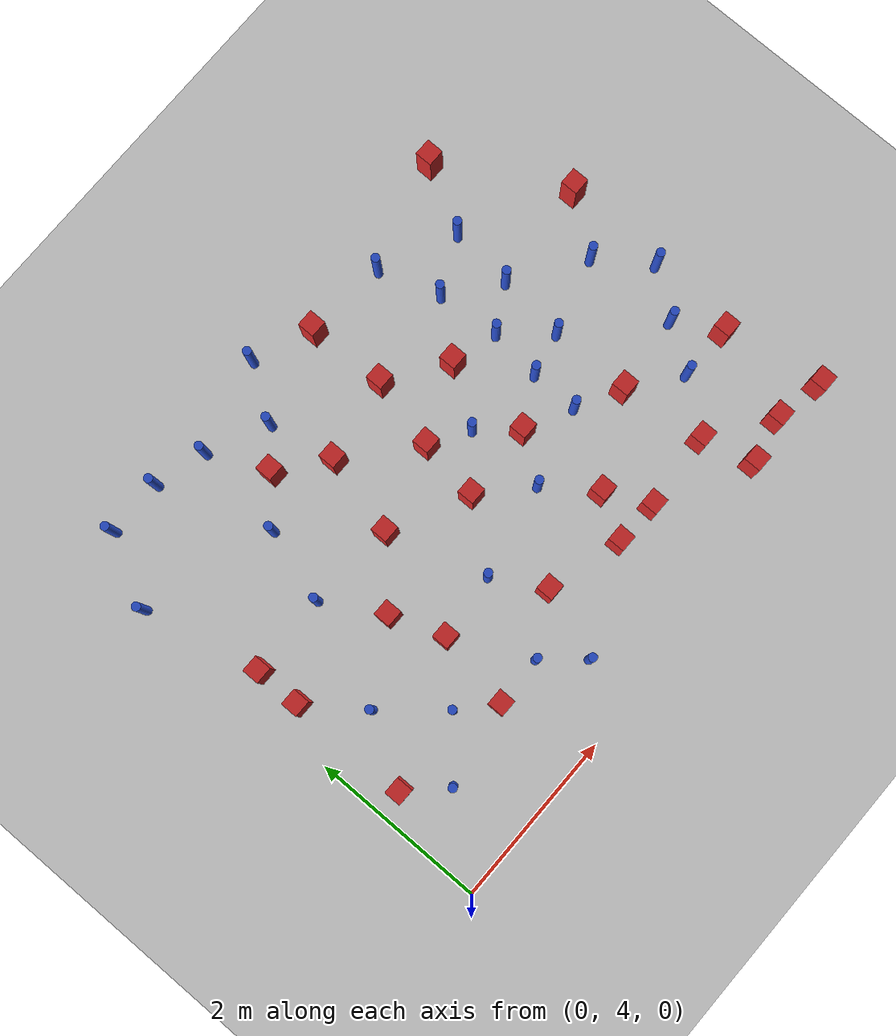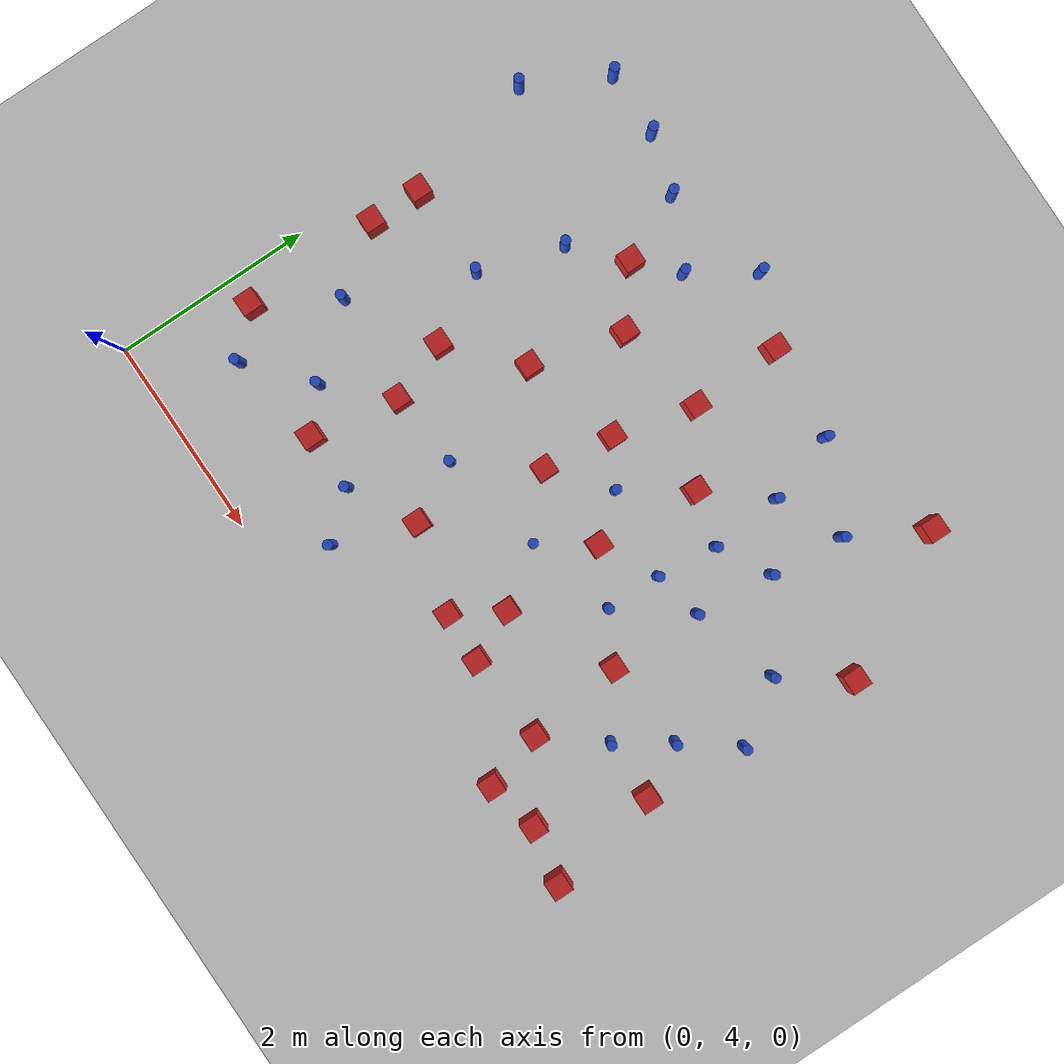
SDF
<sdf version="1.6">
 <world name="default">
  <model name="ground_plane">
   <static>1</static>
   <link name="link">
    <collision name="collision">
     <geometry><plane><normal>0 0 1</normal><size>100 100</size></plane></geometry>
     <surface><friction><ode><mu>100</mu><mu2>50</mu2></ode></friction></surface>
    </collision>
    <visual name="visual">
     <cast_shadows>0</cast_shadows>
     <geometry><plane><normal>0 0 1</normal><size>100 100</size></plane></geometry>
     <material>
      <ambient>1.0 1.0 1.0 1.0</ambient>
      <diffuse>0.8 0.8 0.8 1.0</diffuse>
      <specular>0.01 0.01 0.01 1.000000</specular>
     </material>
    </visual>
   </link>
  </model>
  <model name="pole_obstacle1">
   <static>true</static>
   <pose>4.37582242248 9.04554621541 2.88873142074e-08 -9.9053668967e-09 4.60219948993e-07 -1.20965994957e-07</pose>
   <link name="link">
    <pose>0 0 0.3 0 -0 0</pose>
    <inertial>
     <mass>1</mass>
     <inertia><ixx>0.145833</ixx><ixy>0</ixy><ixz>0</ixz><iyy>0.145833</iyy><iyz>0</iyz><izz>0.125</izz></inertia>
    </inertial>
    <collision name="collision">
     <geometry><cylinder><radius>0.05</radius><length>.6</length></cylinder></geometry>
    </collision>
    <visual name="visual">
     <geometry><cylinder><radius>0.05</radius><length>.6</length></cylinder></geometry>
     <material>
      <script><name>Gazebo/Blue</name><uri>file://media/materials/scripts/gazebo.material</uri></script>
     </material>
    </visual>
   </link>
  </model>
  <model name="square_post_obstacle7">
   <static>true</static>
   <pose>2.27140523398 7.10940884494 8.22691968438e-08 7.2212513382e-06 -7.54495500217e-07 2.29674213826e-05</pose>
   <link name="link">
    <pose>0 0 0.25 0 -0 0</pose>
    <inertial>
     <mass>100</mass>
     <inertia>
      <ixx>0.166667</ixx>
      <ixy>0</ixy>
      <ixz>0</ixz>
      <iyy>0.166667</iyy>
      <iyz>0</iyz>
      <izz>0.166667</izz>
     </inertia>
    </inertial>
    <collision name="collision"><geometry><box><size>.2 .2 .5</size></box></geometry></collision>
    <visual name="visual">
     <geometry><box><size>.2 .2 .5</size></box></geometry>
     <material>
      <script><name>Gazebo/Red</name><uri>file://media/materials/scripts/gazebo.material</uri></script>
     </material>
    </visual>
   </link>
  </model>
  <model name="pole_obstacle9">
   <static>true</static>
   <pose>1.67303859116 9.12570394465 2.88873142074e-08 -9.90536690474e-09 4.60219948974e-07 -1.2096599497e-07</pose>
   <link name="link">
    <pose>0 0 0.3 0 -0 0</pose>
    <inertial>
     <mass>1</mass>
     <inertia><ixx>0.145833</ixx><ixy>0</ixy><ixz>0</ixz><iyy>0.145833</iyy><iyz>0</iyz><izz>0.125</izz></inertia>
    </inertial>
    <collision name="collision">
     <geometry><cylinder><radius>0.05</radius><length>.6</length></cylinder></geometry>
    </collision>
    <visual name="visual">
     <geometry><cylinder><radius>0.05</radius><length>.6</length></cylinder></geometry>
     <material>
      <script><name>Gazebo/Blue</name><uri>file://media/materials/scripts/gazebo.material</uri></script>
     </material>
    </visual>
   </link>
  </model>
  <model name="square_post_obstacle11">
   <static>true</static>
   <pose>5.87914294403 4.74547711981 8.22691968438e-08 7.2212513382e-06 -7.54495500217e-07 2.29674213826e-05</pose>
   <link name="link">
    <pose>0 0 0.25 0 -0 0</pose>
    <inertial>
     <mass>100</mass>
     <inertia>
      <ixx>0.166667</ixx>
      <ixy>0</ixy>
      <ixz>0</ixz>
      <iyy>0.166667</iyy>
      <iyz>0</iyz>
      <izz>0.166667</izz>
     </inertia>
    </inertial>
    <collision name="collision"><geometry><box><size>.2 .2 .5</size></box></geometry></collision>
    <visual name="visual">
     <geometry><box><size>.2 .2 .5</size></box></geometry>
     <material>
      <script><name>Gazebo/Red</name><uri>file://media/materials/scripts/gazebo.material</uri></script>
     </material>
    </visual>
   </link>
  </model>
  <model name="pole_obstacle14">
   <static>true</static>
   <pose>0.768665898864 6.00691216805 2.88873142074e-08 -9.90536689661e-09 4.60219948993e-07 -1.20965994957e-07</pose>
   <link name="link">
    <pose>0 0 0.3 0 -0 0</pose>
    <inertial>
     <mass>1</mass>
     <inertia><ixx>0.145833</ixx><ixy>0</ixy><ixz>0</ixz><iyy>0.145833</iyy><iyz>0</iyz><izz>0.125</izz></inertia>
    </inertial>
    <collision name="collision">
     <geometry><cylinder><radius>0.05</radius><length>.6</length></cylinder></geometry>
    </collision>
    <visual name="visual">
     <geometry><cylinder><radius>0.05</radius><length>.6</length></cylinder></geometry>
     <material>
      <script><name>Gazebo/Blue</name><uri>file://media/materials/scripts/gazebo.material</uri></script>
     </material>
    </visual>
   </link>
  </model>
  <model name="square_post_obstacle15">
   <static>true</static>
   <pose>4.2999144124 5.15975397987 8.22691968438e-08 7.2212513382e-06 -7.54495500217e-07 2.29674213826e-05</pose>
   <link name="link">
    <pose>0 0 0.25 0 -0 0</pose>
    <inertial>
     <mass>100</mass>
     <inertia>
      <ixx>0.166667</ixx>
      <ixy>0</ixy>
      <ixz>0</ixz>
      <iyy>0.166667</iyy>
      <iyz>0</iyz>
      <izz>0.166667</izz>
     </inertia>
    </inertial>
    <collision name="collision"><geometry><box><size>.2 .2 .5</size></box></geometry></collision>
    <visual name="visual">
     <geometry><box><size>.2 .2 .5</size></box></geometry>
     <material>
      <script><name>Gazebo/Red</name><uri>file://media/materials/scripts/gazebo.material</uri></script>
     </material>
    </visual>
   </link>
  </model>
  <model name="pole_obstacle25">
   <static>true</static>
   <pose>2.26771503602 5.04621927539 2.88873142074e-08 -9.90536689859e-09 4.60219948989e-07 -1.20965994961e-07</pose>
   <link name="link">
    <pose>0 0 0.3 0 -0 0</pose>
    <inertial>
     <mass>1</mass>
     <inertia><ixx>0.145833</ixx><ixy>0</ixy><ixz>0</ixz><iyy>0.145833</iyy><iyz>0</iyz><izz>0.125</izz></inertia>
    </inertial>
    <collision name="collision">
     <geometry><cylinder><radius>0.05</radius><length>.6</length></cylinder></geometry>
    </collision>
    <visual name="visual">
     <geometry><cylinder><radius>0.05</radius><length>.6</length></cylinder></geometry>
     <material>
      <script><name>Gazebo/Blue</name><uri>file://media/materials/scripts/gazebo.material</uri></script>
     </material>
    </visual>
   </link>
  </model>
  <model name="pole_obstacle29">
   <static>true</static>
   <pose>5.16840113811 7.90871207947 2.88873142074e-08 -9.90536690842e-09 4.60219948965e-07 -1.20965994976e-07</pose>
   <link name="link">
    <pose>0 0 0.3 0 -0 0</pose>
    <inertial>
     <mass>1</mass>
     <inertia><ixx>0.145833</ixx><ixy>0</ixy><ixz>0</ixz><iyy>0.145833</iyy><iyz>0</iyz><izz>0.125</izz></inertia>
    </inertial>
    <collision name="collision">
     <geometry><cylinder><radius>0.05</radius><length>.6</length></cylinder></geometry>
    </collision>
    <visual name="visual">
     <geometry><cylinder><radius>0.05</radius><length>.6</length></cylinder></geometry>
     <material>
      <script><name>Gazebo/Blue</name><uri>file://media/materials/scripts/gazebo.material</uri></script>
     </material>
    </visual>
   </link>
  </model>
  <model name="pole_obstacle30">
   <static>true</static>
   <pose>2.635143867 4.61982971929 2.88873142074e-08 -9.90536689859e-09 4.60219948989e-07 -1.20965994961e-07</pose>
   <link name="link">
    <pose>0 0 0.3 0 -0 0</pose>
    <inertial>
     <mass>1</mass>
     <inertia><ixx>0.145833</ixx><ixy>0</ixy><ixz>0</ixz><iyy>0.145833</iyy><iyz>0</iyz><izz>0.125</izz></inertia>
    </inertial>
    <collision name="collision">
     <geometry><cylinder><radius>0.05</radius><length>.6</length></cylinder></geometry>
    </collision>
    <visual name="visual">
     <geometry><cylinder><radius>0.05</radius><length>.6</length></cylinder></geometry>
     <material>
      <script><name>Gazebo/Blue</name><uri>file://media/materials/scripts/gazebo.material</uri></script>
     </material>
    </visual>
   </link>
  </model>
  <model name="square_post_obstacle28">
   <static>true</static>
   <pose>5.64758579217 9.39362033565 8.22691968438e-08 7.22125133819e-06 -7.54495500217e-07 2.29674213826e-05</pose>
   <link name="link">
    <pose>0 0 0.25 0 -0 0</pose>
    <inertial>
     <mass>100</mass>
     <inertia>
      <ixx>0.166667</ixx>
      <ixy>0</ixy>
      <ixz>0</ixz>
      <iyy>0.166667</iyy>
      <iyz>0</iyz>
      <izz>0.166667</izz>
     </inertia>
    </inertial>
    <collision name="collision"><geometry><box><size>.2 .2 .5</size></box></geometry></collision>
    <visual name="visual">
     <geometry><box><size>.2 .2 .5</size></box></geometry>
     <material>
      <script><name>Gazebo/Red</name><uri>file://media/materials/scripts/gazebo.material</uri></script>
     </material>
    </visual>
   </link>
  </model>
  <model name="pole_obstacle44">
   <static>true</static>
   <pose>5.63922672842 5.77628355958 2.88873142074e-08 -9.90536690842e-09 4.60219948965e-07 -1.20965994976e-07</pose>
   <link name="link">
    <pose>0 0 0.3 0 -0 0</pose>
    <inertial>
     <mass>1</mass>
     <inertia><ixx>0.145833</ixx><ixy>0</ixy><ixz>0</ixz><iyy>0.145833</iyy><iyz>0</iyz><izz>0.125</izz></inertia>
    </inertial>
    <collision name="collision">
     <geometry><cylinder><radius>0.05</radius><length>.6</length></cylinder></geometry>
    </collision>
    <visual name="visual">
     <geometry><cylinder><radius>0.05</radius><length>.6</length></cylinder></geometry>
     <material>
      <script><name>Gazebo/Blue</name><uri>file://media/materials/scripts/gazebo.material</uri></script>
     </material>
    </visual>
   </link>
  </model>
  <model name="pole_obstacle46">
   <static>true</static>
   <pose>4.66113152641 7.61625654122 2.88873142074e-08 -9.90536690842e-09 4.60219948965e-07 -1.20965994976e-07</pose>
   <link name="link">
    <pose>0 0 0.3 0 -0 0</pose>
    <inertial>
     <mass>1</mass>
     <inertia><ixx>0.145833</ixx><ixy>0</ixy><ixz>0</ixz><iyy>0.145833</iyy><iyz>0</iyz><izz>0.125</izz></inertia>
    </inertial>
    <collision name="collision">
     <geometry><cylinder><radius>0.05</radius><length>.6</length></cylinder></geometry>
    </collision>
    <visual name="visual">
     <geometry><cylinder><radius>0.05</radius><length>.6</length></cylinder></geometry>
     <material>
      <script><name>Gazebo/Blue</name><uri>file://media/materials/scripts/gazebo.material</uri></script>
     </material>
    </visual>
   </link>
  </model>
  <model name="pole_obstacle57">
   <static>true</static>
   <pose>4.58916156447 7.01213017 2.88873142074e-08 -9.90536690842e-09 4.60219948965e-07 -1.20965994976e-07</pose>
   <link name="link">
    <pose>0 0 0.3 0 -0 0</pose>
    <inertial>
     <mass>1</mass>
     <inertia><ixx>0.145833</ixx><ixy>0</ixy><ixz>0</ixz><iyy>0.145833</iyy><iyz>0</iyz><izz>0.125</izz></inertia>
    </inertial>
    <collision name="collision">
     <geometry><cylinder><radius>0.05</radius><length>.6</length></cylinder></geometry>
    </collision>
    <visual name="visual">
     <geometry><cylinder><radius>0.05</radius><length>.6</length></cylinder></geometry>
     <material>
      <script><name>Gazebo/Blue</name><uri>file://media/materials/scripts/gazebo.material</uri></script>
     </material>
    </visual>
   </link>
  </model>
  <model name="pole_obstacle66">
   <static>true</static>
   <pose>1.08104737306 9.29453402607 2.88873142074e-08 -9.90536690474e-09 4.60219948974e-07 -1.2096599497e-07</pose>
   <link name="link">
    <pose>0 0 0.3 0 -0 0</pose>
    <inertial>
     <mass>1</mass>
     <inertia><ixx>0.145833</ixx><ixy>0</ixy><ixz>0</ixz><iyy>0.145833</iyy><iyz>0</iyz><izz>0.125</izz></inertia>
    </inertial>
    <collision name="collision">
     <geometry><cylinder><radius>0.05</radius><length>.6</length></cylinder></geometry>
    </collision>
    <visual name="visual">
     <geometry><cylinder><radius>0.05</radius><length>.6</length></cylinder></geometry>
     <material>
      <script><name>Gazebo/Blue</name><uri>file://media/materials/scripts/gazebo.material</uri></script>
     </material>
    </visual>
   </link>
  </model>
  <model name="pole_obstacle69">
   <static>true</static>
   <pose>0.717750274644 4.85608475178 2.88873142074e-08 -9.90536689661e-09 4.60219948993e-07 -1.20965994957e-07</pose>
   <link name="link">
    <pose>0 0 0.3 0 -0 0</pose>
    <inertial>
     <mass>1</mass>
     <inertia><ixx>0.145833</ixx><ixy>0</ixy><ixz>0</ixz><iyy>0.145833</iyy><iyz>0</iyz><izz>0.125</izz></inertia>
    </inertial>
    <collision name="collision">
     <geometry><cylinder><radius>0.05</radius><length>.6</length></cylinder></geometry>
    </collision>
    <visual name="visual">
     <geometry><cylinder><radius>0.05</radius><length>.6</length></cylinder></geometry>
     <material>
      <script><name>Gazebo/Blue</name><uri>file://media/materials/scripts/gazebo.material</uri></script>
     </material>
    </visual>
   </link>
  </model>
  <model name="pole_obstacle70">
   <static>true</static>
   <pose>1.30969358087 5.36534693575 2.88873142074e-08 -9.90536689852e-09 4.60219948989e-07 -1.2096599496e-07</pose>
   <link name="link">
    <pose>0 0 0.3 0 -0 0</pose>
    <inertial>
     <mass>1</mass>
     <inertia><ixx>0.145833</ixx><ixy>0</ixy><ixz>0</ixz><iyy>0.145833</iyy><iyz>0</iyz><izz>0.125</izz></inertia>
    </inertial>
    <collision name="collision">
     <geometry><cylinder><radius>0.05</radius><length>.6</length></cylinder></geometry>
    </collision>
    <visual name="visual">
     <geometry><cylinder><radius>0.05</radius><length>.6</length></cylinder></geometry>
     <material>
      <script><name>Gazebo/Blue</name><uri>file://media/materials/scripts/gazebo.material</uri></script>
     </material>
    </visual>
   </link>
  </model>
  <model name="pole_obstacle72">
   <static>true</static>
   <pose>2.35088043466 8.80271986083 2.88873142074e-08 -9.90536692318e-09 4.6021994893e-07 -1.20965994988e-07</pose>
   <link name="link">
    <pose>0 0 0.3 0 -0 0</pose>
    <inertial>
     <mass>1</mass>
     <inertia><ixx>0.145833</ixx><ixy>0</ixy><ixz>0</ixz><iyy>0.145833</iyy><iyz>0</iyz><izz>0.125</izz></inertia>
    </inertial>
    <collision name="collision">
     <geometry><cylinder><radius>0.05</radius><length>.6</length></cylinder></geometry>
    </collision>
    <visual name="visual">
     <geometry><cylinder><radius>0.05</radius><length>.6</length></cylinder></geometry>
     <material>
      <script><name>Gazebo/Blue</name><uri>file://media/materials/scripts/gazebo.material</uri></script>
     </material>
    </visual>
   </link>
  </model>
  <model name="square_post_obstacle63">
   <static>true</static>
   <pose>4.03221038618 6.71513659627 8.22691968438e-08 7.2212513382e-06 -7.54495500217e-07 2.29674213826e-05</pose>
   <link name="link">
    <pose>0 0 0.25 0 -0 0</pose>
    <inertial>
     <mass>100</mass>
     <inertia>
      <ixx>0.166667</ixx>
      <ixy>0</ixy>
      <ixz>0</ixz>
      <iyy>0.166667</iyy>
      <iyz>0</iyz>
      <izz>0.166667</izz>
     </inertia>
    </inertial>
    <collision name="collision"><geometry><box><size>.2 .2 .5</size></box></geometry></collision>
    <visual name="visual">
     <geometry><box><size>.2 .2 .5</size></box></geometry>
     <material>
      <script><name>Gazebo/Red</name><uri>file://media/materials/scripts/gazebo.material</uri></script>
     </material>
    </visual>
   </link>
  </model>
  <model name="pole_obstacle73">
   <static>true</static>
   <pose>0.0142444976926 8.50183415991 2.88873142074e-08 -9.90536690632e-09 4.6021994897e-07 -1.20965994973e-07</pose>
   <link name="link">
    <pose>0 0 0.3 0 -0 0</pose>
    <inertial>
     <mass>1</mass>
     <inertia><ixx>0.145833</ixx><ixy>0</ixy><ixz>0</ixz><iyy>0.145833</iyy><iyz>0</iyz><izz>0.125</izz></inertia>
    </inertial>
    <collision name="collision">
     <geometry><cylinder><radius>0.05</radius><length>.6</length></cylinder></geometry>
    </collision>
    <visual name="visual">
     <geometry><cylinder><radius>0.05</radius><length>.6</length></cylinder></geometry>
     <material>
      <script><name>Gazebo/Blue</name><uri>file://media/materials/scripts/gazebo.material</uri></script>
     </material>
    </visual>
   </link>
  </model>
  <model name="square_post_obstacle69">
   <static>true</static>
   <pose>4.11690083242 7.75738037576 8.22691968438e-08 7.2212513382e-06 -7.54495500217e-07 2.29674213826e-05</pose>
   <link name="link">
    <pose>0 0 0.25 0 -0 0</pose>
    <inertial>
     <mass>100</mass>
     <inertia>
      <ixx>0.166667</ixx>
      <ixy>0</ixy>
      <ixz>0</ixz>
      <iyy>0.166667</iyy>
      <iyz>0</iyz>
      <izz>0.166667</izz>
     </inertia>
    </inertial>
    <collision name="collision"><geometry><box><size>.2 .2 .5</size></box></geometry></collision>
    <visual name="visual">
     <geometry><box><size>.2 .2 .5</size></box></geometry>
     <material>
      <script><name>Gazebo/Red</name><uri>file://media/materials/scripts/gazebo.material</uri></script>
     </material>
    </visual>
   </link>
  </model>
  <model name="square_post_obstacle70">
   <static>true</static>
   <pose>3.45581572469 8.20162774787 8.22691968438e-08 7.22125133819e-06 -7.54495500217e-07 2.29674213826e-05</pose>
   <link name="link">
    <pose>0 0 0.25 0 -0 0</pose>
    <inertial>
     <mass>100</mass>
     <inertia>
      <ixx>0.166667</ixx>
      <ixy>0</ixy>
      <ixz>0</ixz>
      <iyy>0.166667</iyy>
      <iyz>0</iyz>
      <izz>0.166667</izz>
     </inertia>
    </inertial>
    <collision name="collision"><geometry><box><size>.2 .2 .5</size></box></geometry></collision>
    <visual name="visual">
     <geometry><box><size>.2 .2 .5</size></box></geometry>
     <material>
      <script><name>Gazebo/Red</name><uri>file://media/materials/scripts/gazebo.material</uri></script>
     </material>
    </visual>
   </link>
  </model>
  <model name="pole_obstacle83">
   <static>true</static>
   <pose>5.24245482395 8.6506746769 2.88873142074e-08 -9.9053668967e-09 4.60219948993e-07 -1.20965994957e-07</pose>
   <link name="link">
    <pose>0 0 0.3 0 -0 0</pose>
    <inertial>
     <mass>1</mass>
     <inertia><ixx>0.145833</ixx><ixy>0</ixy><ixz>0</ixz><iyy>0.145833</iyy><iyz>0</iyz><izz>0.125</izz></inertia>
    </inertial>
    <collision name="collision">
     <geometry><cylinder><radius>0.05</radius><length>.6</length></cylinder></geometry>
    </collision>
    <visual name="visual">
     <geometry><cylinder><radius>0.05</radius><length>.6</length></cylinder></geometry>
     <material>
      <script><name>Gazebo/Blue</name><uri>file://media/materials/scripts/gazebo.material</uri></script>
     </material>
    </visual>
   </link>
  </model>
  <model name="pole_obstacle87">
   <static>true</static>
   <pose>5.96179167529 7.38092515661 2.88873142074e-08 -9.90536690842e-09 4.60219948965e-07 -1.20965994976e-07</pose>
   <link name="link">
    <pose>0 0 0.3 0 -0 0</pose>
    <inertial>
     <mass>1</mass>
     <inertia><ixx>0.145833</ixx><ixy>0</ixy><ixz>0</ixz><iyy>0.145833</iyy><iyz>0</iyz><izz>0.125</izz></inertia>
    </inertial>
    <collision name="collision">
     <geometry><cylinder><radius>0.05</radius><length>.6</length></cylinder></geometry>
    </collision>
    <visual name="visual">
     <geometry><cylinder><radius>0.05</radius><length>.6</length></cylinder></geometry>
     <material>
      <script><name>Gazebo/Blue</name><uri>file://media/materials/scripts/gazebo.material</uri></script>
     </material>
    </visual>
   </link>
  </model>
  <model name="square_post_obstacle79">
   <static>true</static>
   <pose>1.84416893084 5.9108338816 8.22691968438e-08 7.2212513382e-06 -7.54495500217e-07 2.29674213826e-05</pose>
   <link name="link">
    <pose>0 0 0.25 0 -0 0</pose>
    <inertial>
     <mass>100</mass>
     <inertia>
      <ixx>0.166667</ixx>
      <ixy>0</ixy>
      <ixz>0</ixz>
      <iyy>0.166667</iyy>
      <iyz>0</iyz>
      <izz>0.166667</izz>
     </inertia>
    </inertial>
    <collision name="collision"><geometry><box><size>.2 .2 .5</size></box></geometry></collision>
    <visual name="visual">
     <geometry><box><size>.2 .2 .5</size></box></geometry>
     <material>
      <script><name>Gazebo/Red</name><uri>file://media/materials/scripts/gazebo.material</uri></script>
     </material>
    </visual>
   </link>
  </model>
  <model name="square_post_obstacle86">
   <static>true</static>
   <pose>5.34822178189 4.6316248602 8.22691968438e-08 7.2212513382e-06 -7.54495500217e-07 2.29674213826e-05</pose>
   <link name="link">
    <pose>0 0 0.25 0 -0 0</pose>
    <inertial>
     <mass>100</mass>
     <inertia>
      <ixx>0.166667</ixx>
      <ixy>0</ixy>
      <ixz>0</ixz>
      <iyy>0.166667</iyy>
      <iyz>0</iyz>
      <izz>0.166667</izz>
     </inertia>
    </inertial>
    <collision name="collision"><geometry><box><size>.2 .2 .5</size></box></geometry></collision>
    <visual name="visual">
     <geometry><box><size>.2 .2 .5</size></box></geometry>
     <material>
      <script><name>Gazebo/Red</name><uri>file://media/materials/scripts/gazebo.material</uri></script>
     </material>
    </visual>
   </link>
  </model>
  <model name="pole_obstacle94">
   <static>true</static>
   <pose>2.60577310049 5.98732288114 2.88873142074e-08 -9.90536689859e-09 4.60219948989e-07 -1.20965994961e-07</pose>
   <link name="link">
    <pose>0 0 0.3 0 -0 0</pose>
    <inertial>
     <mass>1</mass>
     <inertia><ixx>0.145833</ixx><ixy>0</ixy><ixz>0</ixz><iyy>0.145833</iyy><iyz>0</iyz><izz>0.125</izz></inertia>
    </inertial>
    <collision name="collision">
     <geometry><cylinder><radius>0.05</radius><length>.6</length></cylinder></geometry>
    </collision>
    <visual name="visual">
     <geometry><cylinder><radius>0.05</radius><length>.6</length></cylinder></geometry>
     <material>
      <script><name>Gazebo/Blue</name><uri>file://media/materials/scripts/gazebo.material</uri></script>
     </material>
    </visual>
   </link>
  </model>
  <model name="square_post_obstacle96">
   <static>true</static>
   <pose>0.324583927395 7.1554686003 8.22691968438e-08 7.22125133819e-06 -7.54495500217e-07 2.29674213826e-05</pose>
   <link name="link">
    <pose>0 0 0.25 0 -0 0</pose>
    <inertial>
     <mass>100</mass>
     <inertia>
      <ixx>0.166667</ixx>
      <ixy>0</ixy>
      <ixz>0</ixz>
      <iyy>0.166667</iyy>
      <iyz>0</iyz>
      <izz>0.166667</izz>
     </inertia>
    </inertial>
    <collision name="collision"><geometry><box><size>.2 .2 .5</size></box></geometry></collision>
    <visual name="visual">
     <geometry><box><size>.2 .2 .5</size></box></geometry>
     <material>
      <script><name>Gazebo/Red</name><uri>file://media/materials/scripts/gazebo.material</uri></script>
     </material>
    </visual>
   </link>
  </model>
  <model name="square_post_obstacle99">
   <static>true</static>
   <pose>1.62995833025 6.5139701768 8.22691968438e-08 7.2212513382e-06 -7.54495500217e-07 2.29674213826e-05</pose>
   <link name="link">
    <pose>0 0 0.25 0 -0 0</pose>
    <inertial>
     <mass>100</mass>
     <inertia>
      <ixx>0.166667</ixx>
      <ixy>0</ixy>
      <ixz>0</ixz>
      <iyy>0.166667</iyy>
      <iyz>0</iyz>
      <izz>0.166667</izz>
     </inertia>
    </inertial>
    <collision name="collision"><geometry><box><size>.2 .2 .5</size></box></geometry></collision>
    <visual name="visual">
     <geometry><box><size>.2 .2 .5</size></box></geometry>
     <material>
      <script><name>Gazebo/Red</name><uri>file://media/materials/scripts/gazebo.material</uri></script>
     </material>
    </visual>
   </link>
  </model>
  <model name="square_post_obstacle104">
   <static>true</static>
   <pose>6.25138122054 5.77633043374 8.22691968438e-08 7.2212513382e-06 -7.54495500217e-07 2.29674213826e-05</pose>
   <link name="link">
    <pose>0 0 0.25 0 -0 0</pose>
    <inertial>
     <mass>100</mass>
     <inertia>
      <ixx>0.166667</ixx>
      <ixy>0</ixy>
      <ixz>0</ixz>
      <iyy>0.166667</iyy>
      <iyz>0</iyz>
      <izz>0.166667</izz>
     </inertia>
    </inertial>
    <collision name="collision"><geometry><box><size>.2 .2 .5</size></box></geometry></collision>
    <visual name="visual">
     <geometry><box><size>.2 .2 .5</size></box></geometry>
     <material>
      <script><name>Gazebo/Red</name><uri>file://media/materials/scripts/gazebo.material</uri></script>
     </material>
    </visual>
   </link>
  </model>
  <model name="pole_obstacle112">
   <static>true</static>
   <pose>1.25528943194 7.18623036111 2.88873142074e-08 -9.90536689852e-09 4.60219948989e-07 -1.2096599496e-07</pose>
   <link name="link">
    <pose>0 0 0.3 0 -0 0</pose>
    <inertial>
     <mass>1</mass>
     <inertia><ixx>0.145833</ixx><ixy>0</ixy><ixz>0</ixz><iyy>0.145833</iyy><iyz>0</iyz><izz>0.125</izz></inertia>
    </inertial>
    <collision name="collision">
     <geometry><cylinder><radius>0.05</radius><length>.6</length></cylinder></geometry>
    </collision>
    <visual name="visual">
     <geometry><cylinder><radius>0.05</radius><length>.6</length></cylinder></geometry>
     <material>
      <script><name>Gazebo/Blue</name><uri>file://media/materials/scripts/gazebo.material</uri></script>
     </material>
    </visual>
   </link>
  </model>
  <model name="square_post_obstacle114">
   <static>true</static>
   <pose>2.50467271272 8.03018523158 8.22691968438e-08 7.22125133819e-06 -7.54495500217e-07 2.29674213826e-05</pose>
   <link name="link">
    <pose>0 0 0.25 0 -0 0</pose>
    <inertial>
     <mass>100</mass>
     <inertia>
      <ixx>0.166667</ixx>
      <ixy>0</ixy>
      <ixz>0</ixz>
      <iyy>0.166667</iyy>
      <iyz>0</iyz>
      <izz>0.166667</izz>
     </inertia>
    </inertial>
    <collision name="collision"><geometry><box><size>.2 .2 .5</size></box></geometry></collision>
    <visual name="visual">
     <geometry><box><size>.2 .2 .5</size></box></geometry>
     <material>
      <script><name>Gazebo/Red</name><uri>file://media/materials/scripts/gazebo.material</uri></script>
     </material>
    </visual>
   </link>
  </model>
  <model name="square_post_obstacle116">
   <static>true</static>
   <pose>3.42162015402 9.11547860166 8.22691968438e-08 7.22125133819e-06 -7.54495500217e-07 2.29674213826e-05</pose>
   <link name="link">
    <pose>0 0 0.25 0 -0 0</pose>
    <inertial>
     <mass>100</mass>
     <inertia>
      <ixx>0.166667</ixx>
      <ixy>0</ixy>
      <ixz>0</ixz>
      <iyy>0.166667</iyy>
      <iyz>0</iyz>
      <izz>0.166667</izz>
     </inertia>
    </inertial>
    <collision name="collision"><geometry><box><size>.2 .2 .5</size></box></geometry></collision>
    <visual name="visual">
     <geometry><box><size>.2 .2 .5</size></box></geometry>
     <material>
      <script><name>Gazebo/Red</name><uri>file://media/materials/scripts/gazebo.material</uri></script>
     </material>
    </visual>
   </link>
  </model>
  <model name="pole_obstacle118">
   <static>true</static>
   <pose>5.97306005886 6.27981291725 2.88873142074e-08 -9.90536690842e-09 4.60219948965e-07 -1.20965994976e-07</pose>
   <link name="link">
    <pose>0 0 0.3 0 -0 0</pose>
    <inertial>
     <mass>1</mass>
     <inertia><ixx>0.145833</ixx><ixy>0</ixy><ixz>0</ixz><iyy>0.145833</iyy><iyz>0</iyz><izz>0.125</izz></inertia>
    </inertial>
    <collision name="collision">
     <geometry><cylinder><radius>0.05</radius><length>.6</length></cylinder></geometry>
    </collision>
    <visual name="visual">
     <geometry><cylinder><radius>0.05</radius><length>.6</length></cylinder></geometry>
     <material>
      <script><name>Gazebo/Blue</name><uri>file://media/materials/scripts/gazebo.material</uri></script>
     </material>
    </visual>
   </link>
  </model>
  <model name="square_post_obstacle119">
   <static>true</static>
   <pose>5.18188155356 5.22355692115 8.22691968438e-08 7.2212513382e-06 -7.54495500217e-07 2.29674213826e-05</pose>
   <link name="link">
    <pose>0 0 0.25 0 -0 0</pose>
    <inertial>
     <mass>100</mass>
     <inertia>
      <ixx>0.166667</ixx>
      <ixy>0</ixy>
      <ixz>0</ixz>
      <iyy>0.166667</iyy>
      <iyz>0</iyz>
      <izz>0.166667</izz>
     </inertia>
    </inertial>
    <collision name="collision"><geometry><box><size>.2 .2 .5</size></box></geometry></collision>
    <visual name="visual">
     <geometry><box><size>.2 .2 .5</size></box></geometry>
     <material>
      <script><name>Gazebo/Red</name><uri>file://media/materials/scripts/gazebo.material</uri></script>
     </material>
    </visual>
   </link>
  </model>
  <model name="pole_obstacle126">
   <static>true</static>
   <pose>3.6830967525 6.21019851171 2.88873142074e-08 -9.90536689859e-09 4.60219948989e-07 -1.20965994961e-07</pose>
   <link name="link">
    <pose>0 0 0.3 0 -0 0</pose>
    <inertial>
     <mass>1</mass>
     <inertia><ixx>0.145833</ixx><ixy>0</ixy><ixz>0</ixz><iyy>0.145833</iyy><iyz>0</iyz><izz>0.125</izz></inertia>
    </inertial>
    <collision name="collision">
     <geometry><cylinder><radius>0.05</radius><length>.6</length></cylinder></geometry>
    </collision>
    <visual name="visual">
     <geometry><cylinder><radius>0.05</radius><length>.6</length></cylinder></geometry>
     <material>
      <script><name>Gazebo/Blue</name><uri>file://media/materials/scripts/gazebo.material</uri></script>
     </material>
    </visual>
   </link>
  </model>
  <model name="square_post_obstacle124">
   <static>true</static>
   <pose>3.25554763245 7.38763198585 8.22691968438e-08 7.2212513382e-06 -7.54495500217e-07 2.29674213826e-05</pose>
   <link name="link">
    <pose>0 0 0.25 0 -0 0</pose>
    <inertial>
     <mass>100</mass>
     <inertia>
      <ixx>0.166667</ixx>
      <ixy>0</ixy>
      <ixz>0</ixz>
      <iyy>0.166667</iyy>
      <iyz>0</iyz>
      <izz>0.166667</izz>
     </inertia>
    </inertial>
    <collision name="collision"><geometry><box><size>.2 .2 .5</size></box></geometry></collision>
    <visual name="visual">
     <geometry><box><size>.2 .2 .5</size></box></geometry>
     <material>
      <script><name>Gazebo/Red</name><uri>file://media/materials/scripts/gazebo.material</uri></script>
     </material>
    </visual>
   </link>
  </model>
  <model name="square_post_obstacle138">
   <static>true</static>
   <pose>1.9809593903 8.44339157926 8.22691968438e-08 7.22125133819e-06 -7.54495500217e-07 2.29674213826e-05</pose>
   <link name="link">
    <pose>0 0 0.25 0 -0 0</pose>
    <inertial>
     <mass>100</mass>
     <inertia>
      <ixx>0.166667</ixx>
      <ixy>0</ixy>
      <ixz>0</ixz>
      <iyy>0.166667</iyy>
      <iyz>0</iyz>
      <izz>0.166667</izz>
     </inertia>
    </inertial>
    <collision name="collision"><geometry><box><size>.2 .2 .5</size></box></geometry></collision>
    <visual name="visual">
     <geometry><box><size>.2 .2 .5</size></box></geometry>
     <material>
      <script><name>Gazebo/Red</name><uri>file://media/materials/scripts/gazebo.material</uri></script>
     </material>
    </visual>
   </link>
  </model>
  <model name="square_post_obstacle145">
   <static>true</static>
   <pose>3.1549941436 6.68277958156 8.22691968438e-08 7.2212513382e-06 -7.54495500217e-07 2.29674213826e-05</pose>
   <link name="link">
    <pose>0 0 0.25 0 -0 0</pose>
    <inertial>
     <mass>100</mass>
     <inertia>
      <ixx>0.166667</ixx>
      <ixy>0</ixy>
      <ixz>0</ixz>
      <iyy>0.166667</iyy>
      <iyz>0</iyz>
      <izz>0.166667</izz>
     </inertia>
    </inertial>
    <collision name="collision"><geometry><box><size>.2 .2 .5</size></box></geometry></collision>
    <visual name="visual">
     <geometry><box><size>.2 .2 .5</size></box></geometry>
     <material>
      <script><name>Gazebo/Red</name><uri>file://media/materials/scripts/gazebo.material</uri></script>
     </material>
    </visual>
   </link>
  </model>
  <model name="square_post_obstacle146">
   <static>true</static>
   <pose>6.41152935157 8.00347819397 8.22691968438e-08 7.22125133819e-06 -7.54495500217e-07 2.29674213826e-05</pose>
   <link name="link">
    <pose>0 0 0.25 0 -0 0</pose>
    <inertial>
     <mass>100</mass>
     <inertia>
      <ixx>0.166667</ixx>
      <ixy>0</ixy>
      <ixz>0</ixz>
      <iyy>0.166667</iyy>
      <iyz>0</iyz>
      <izz>0.166667</izz>
     </inertia>
    </inertial>
    <collision name="collision"><geometry><box><size>.2 .2 .5</size></box></geometry></collision>
    <visual name="visual">
     <geometry><box><size>.2 .2 .5</size></box></geometry>
     <material>
      <script><name>Gazebo/Red</name><uri>file://media/materials/scripts/gazebo.material</uri></script>
     </material>
    </visual>
   </link>
  </model>
  <model name="square_post_obstacle151">
   <static>true</static>
   <pose>6.45404718 4.63761222654 8.22691968438e-08 7.2212513382e-06 -7.54495500217e-07 2.29674213826e-05</pose>
   <link name="link">
    <pose>0 0 0.25 0 -0 0</pose>
    <inertial>
     <mass>100</mass>
     <inertia>
      <ixx>0.166667</ixx>
      <ixy>0</ixy>
      <ixz>0</ixz>
      <iyy>0.166667</iyy>
      <iyz>0</iyz>
      <izz>0.166667</izz>
     </inertia>
    </inertial>
    <collision name="collision"><geometry><box><size>.2 .2 .5</size></box></geometry></collision>
    <visual name="visual">
     <geometry><box><size>.2 .2 .5</size></box></geometry>
     <material>
      <script><name>Gazebo/Red</name><uri>file://media/materials/scripts/gazebo.material</uri></script>
     </material>
    </visual>
   </link>
  </model>
  <model name="pole_obstacle155">
   <static>true</static>
   <pose>0.420980444803 9.30146546964 2.88873142074e-08 -9.90536691079e-09 4.6021994896e-07 -1.2096599498e-07</pose>
   <link name="link">
    <pose>0 0 0.3 0 -0 0</pose>
    <inertial>
     <mass>1</mass>
     <inertia><ixx>0.145833</ixx><ixy>0</ixy><ixz>0</ixz><iyy>0.145833</iyy><iyz>0</iyz><izz>0.125</izz></inertia>
    </inertial>
    <collision name="collision">
     <geometry><cylinder><radius>0.05</radius><length>.6</length></cylinder></geometry>
    </collision>
    <visual name="visual">
     <geometry><cylinder><radius>0.05</radius><length>.6</length></cylinder></geometry>
     <material>
      <script><name>Gazebo/Blue</name><uri>file://media/materials/scripts/gazebo.material</uri></script>
     </material>
    </visual>
   </link>
  </model>
  <model name="pole_obstacle161">
   <static>true</static>
   <pose>5.08740626654 7.1222589432 2.88873142074e-08 -9.90536690842e-09 4.60219948965e-07 -1.20965994976e-07</pose>
   <link name="link">
    <pose>0 0 0.3 0 -0 0</pose>
    <inertial>
     <mass>1</mass>
     <inertia><ixx>0.145833</ixx><ixy>0</ixy><ixz>0</ixz><iyy>0.145833</iyy><iyz>0</iyz><izz>0.125</izz></inertia>
    </inertial>
    <collision name="collision">
     <geometry><cylinder><radius>0.05</radius><length>.6</length></cylinder></geometry>
    </collision>
    <visual name="visual">
     <geometry><cylinder><radius>0.05</radius><length>.6</length></cylinder></geometry>
     <material>
      <script><name>Gazebo/Blue</name><uri>file://media/materials/scripts/gazebo.material</uri></script>
     </material>
    </visual>
   </link>
  </model>
  <model name="pole_obstacle168">
   <static>true</static>
   <pose>6.36815973571 6.7945825115 2.88873142074e-08 -9.90536690842e-09 4.60219948965e-07 -1.20965994976e-07</pose>
   <link name="link">
    <pose>0 0 0.3 0 -0 0</pose>
    <inertial>
     <mass>1</mass>
     <inertia><ixx>0.145833</ixx><ixy>0</ixy><ixz>0</ixz><iyy>0.145833</iyy><iyz>0</iyz><izz>0.125</izz></inertia>
    </inertial>
    <collision name="collision">
     <geometry><cylinder><radius>0.05</radius><length>.6</length></cylinder></geometry>
    </collision>
    <visual name="visual">
     <geometry><cylinder><radius>0.05</radius><length>.6</length></cylinder></geometry>
     <material>
      <script><name>Gazebo/Blue</name><uri>file://media/materials/scripts/gazebo.material</uri></script>
     </material>
    </visual>
   </link>
  </model>
  <model name="square_post_obstacle165">
   <static>true</static>
   <pose>5.07085206602 6.19000442379 8.22691968438e-08 7.2212513382e-06 -7.54495500217e-07 2.29674213826e-05</pose>
   <link name="link">
    <pose>0 0 0.25 0 -0 0</pose>
    <inertial>
     <mass>100</mass>
     <inertia>
      <ixx>0.166667</ixx>
      <ixy>0</ixy>
      <ixz>0</ixz>
      <iyy>0.166667</iyy>
      <iyz>0</iyz>
      <izz>0.166667</izz>
     </inertia>
    </inertial>
    <collision name="collision"><geometry><box><size>.2 .2 .5</size></box></geometry></collision>
    <visual name="visual">
     <geometry><box><size>.2 .2 .5</size></box></geometry>
     <material>
      <script><name>Gazebo/Red</name><uri>file://media/materials/scripts/gazebo.material</uri></script>
     </material>
    </visual>
   </link>
  </model>
  <model name="pole_obstacle169">
   <static>true</static>
   <pose>4.578237897 6.45655678323 2.88873142074e-08 -9.90536690842e-09 4.60219948965e-07 -1.20965994976e-07</pose>
   <link name="link">
    <pose>0 0 0.3 0 -0 0</pose>
    <inertial>
     <mass>1</mass>
     <inertia><ixx>0.145833</ixx><ixy>0</ixy><ixz>0</ixz><iyy>0.145833</iyy><iyz>0</iyz><izz>0.125</izz></inertia>
    </inertial>
    <collision name="collision">
     <geometry><cylinder><radius>0.05</radius><length>.6</length></cylinder></geometry>
    </collision>
    <visual name="visual">
     <geometry><cylinder><radius>0.05</radius><length>.6</length></cylinder></geometry>
     <material>
      <script><name>Gazebo/Blue</name><uri>file://media/materials/scripts/gazebo.material</uri></script>
     </material>
    </visual>
   </link>
  </model>
  <model name="square_post_obstacle168">
   <static>true</static>
   <pose>2.91769917038 5.41565993749 8.22691968438e-08 7.2212513382e-06 -7.54495500217e-07 2.29674213826e-05</pose>
   <link name="link">
    <pose>0 0 0.25 0 -0 0</pose>
    <inertial>
     <mass>100</mass>
     <inertia>
      <ixx>0.166667</ixx>
      <ixy>0</ixy>
      <ixz>0</ixz>
      <iyy>0.166667</iyy>
      <iyz>0</iyz>
      <izz>0.166667</izz>
     </inertia>
    </inertial>
    <collision name="collision"><geometry><box><size>.2 .2 .5</size></box></geometry></collision>
    <visual name="visual">
     <geometry><box><size>.2 .2 .5</size></box></geometry>
     <material>
      <script><name>Gazebo/Red</name><uri>file://media/materials/scripts/gazebo.material</uri></script>
     </material>
    </visual>
   </link>
  </model>
  <model name="pole_obstacle171">
   <static>true</static>
   <pose>3.69564724347 7.13041066351 2.88873142074e-08 -9.90536689859e-09 4.60219948989e-07 -1.20965994961e-07</pose>
   <link name="link">
    <pose>0 0 0.3 0 -0 0</pose>
    <inertial>
     <mass>1</mass>
     <inertia><ixx>0.145833</ixx><ixy>0</ixy><ixz>0</ixz><iyy>0.145833</iyy><iyz>0</iyz><izz>0.125</izz></inertia>
    </inertial>
    <collision name="collision">
     <geometry><cylinder><radius>0.05</radius><length>.6</length></cylinder></geometry>
    </collision>
    <visual name="visual">
     <geometry><cylinder><radius>0.05</radius><length>.6</length></cylinder></geometry>
     <material>
      <script><name>Gazebo/Blue</name><uri>file://media/materials/scripts/gazebo.material</uri></script>
     </material>
    </visual>
   </link>
  </model>
  <model name="pole_obstacle173">
   <static>true</static>
   <pose>2.74743649081 9.41111731791 2.88873142074e-08 -9.90536692318e-09 4.6021994893e-07 -1.20965994988e-07</pose>
   <link name="link">
    <pose>0 0 0.3 0 -0 0</pose>
    <inertial>
     <mass>1</mass>
     <inertia><ixx>0.145833</ixx><ixy>0</ixy><ixz>0</ixz><iyy>0.145833</iyy><iyz>0</iyz><izz>0.125</izz></inertia>
    </inertial>
    <collision name="collision">
     <geometry><cylinder><radius>0.05</radius><length>.6</length></cylinder></geometry>
    </collision>
    <visual name="visual">
     <geometry><cylinder><radius>0.05</radius><length>.6</length></cylinder></geometry>
     <material>
      <script><name>Gazebo/Blue</name><uri>file://media/materials/scripts/gazebo.material</uri></script>
     </material>
    </visual>
   </link>
  </model>
  <model name="square_post_obstacle185">
   <static>true</static>
   <pose>1.68907017154 5.03369385917 8.22691968438e-08 7.2212513382e-06 -7.54495500217e-07 2.29674213826e-05</pose>
   <link name="link">
    <pose>0 0 0.25 0 -0 0</pose>
    <inertial>
     <mass>100</mass>
     <inertia>
      <ixx>0.166667</ixx>
      <ixy>0</ixy>
      <ixz>0</ixz>
      <iyy>0.166667</iyy>
      <iyz>0</iyz>
      <izz>0.166667</izz>
     </inertia>
    </inertial>
    <collision name="collision"><geometry><box><size>.2 .2 .5</size></box></geometry></collision>
    <visual name="visual">
     <geometry><box><size>.2 .2 .5</size></box></geometry>
     <material>
      <script><name>Gazebo/Red</name><uri>file://media/materials/scripts/gazebo.material</uri></script>
     </material>
    </visual>
   </link>
  </model>
  <model name="square_post_obstacle195">
   <static>true</static>
   <pose>0.333896943704 5.24979247802 8.22691968438e-08 7.22125133819e-06 -7.54495500217e-07 2.29674213826e-05</pose>
   <link name="link">
    <pose>0 0 0.25 0 -0 0</pose>
    <inertial>
     <mass>100</mass>
     <inertia>
      <ixx>0.166667</ixx>
      <ixy>0</ixy>
      <ixz>0</ixz>
      <iyy>0.166667</iyy>
      <iyz>0</iyz>
      <izz>0.166667</izz>
     </inertia>
    </inertial>
    <collision name="collision"><geometry><box><size>.2 .2 .5</size></box></geometry></collision>
    <visual name="visual">
     <geometry><box><size>.2 .2 .5</size></box></geometry>
     <material>
      <script><name>Gazebo/Red</name><uri>file://media/materials/scripts/gazebo.material</uri></script>
     </material>
    </visual>
   </link>
  </model>
  <model name="square_post_obstacle204">
   <static>true</static>
   <pose>3.7859577738 5.17668679549 8.22691968438e-08 7.2212513382e-06 -7.54495500217e-07 2.29674213826e-05</pose>
   <link name="link">
    <pose>0 0 0.25 0 -0 0</pose>
    <inertial>
     <mass>100</mass>
     <inertia>
      <ixx>0.166667</ixx>
      <ixy>0</ixy>
      <ixz>0</ixz>
      <iyy>0.166667</iyy>
      <iyz>0</iyz>
      <izz>0.166667</izz>
     </inertia>
    </inertial>
    <collision name="collision"><geometry><box><size>.2 .2 .5</size></box></geometry></collision>
    <visual name="visual">
     <geometry><box><size>.2 .2 .5</size></box></geometry>
     <material>
      <script><name>Gazebo/Red</name><uri>file://media/materials/scripts/gazebo.material</uri></script>
     </material>
    </visual>
   </link>
  </model>
  <model name="pole_obstacle195">
   <static>true</static>
   <pose>1.51099740866 8.02321459955 2.88873142074e-08 -9.90536689535e-09 4.60219948996e-07 -1.20965994956e-07</pose>
   <link name="link">
    <pose>0 0 0.3 0 -0 0</pose>
    <inertial>
     <mass>1</mass>
     <inertia><ixx>0.145833</ixx><ixy>0</ixy><ixz>0</ixz><iyy>0.145833</iyy><iyz>0</iyz><izz>0.125</izz></inertia>
    </inertial>
    <collision name="collision">
     <geometry><cylinder><radius>0.05</radius><length>.6</length></cylinder></geometry>
    </collision>
    <visual name="visual">
     <geometry><cylinder><radius>0.05</radius><length>.6</length></cylinder></geometry>
     <material>
      <script><name>Gazebo/Blue</name><uri>file://media/materials/scripts/gazebo.material</uri></script>
     </material>
    </visual>
   </link>
  </model>
  <model name="pole_obstacle207">
   <static>true</static>
   <pose>4.59961647774 8.34184777328 2.88873142074e-08 -9.9053668967e-09 4.60219948993e-07 -1.20965994957e-07</pose>
   <link name="link">
    <pose>0 0 0.3 0 -0 0</pose>
    <inertial>
     <mass>1</mass>
     <inertia><ixx>0.145833</ixx><ixy>0</ixy><ixz>0</ixz><iyy>0.145833</iyy><iyz>0</iyz><izz>0.125</izz></inertia>
    </inertial>
    <collision name="collision">
     <geometry><cylinder><radius>0.05</radius><length>.6</length></cylinder></geometry>
    </collision>
    <visual name="visual">
     <geometry><cylinder><radius>0.05</radius><length>.6</length></cylinder></geometry>
     <material>
      <script><name>Gazebo/Blue</name><uri>file://media/materials/scripts/gazebo.material</uri></script>
     </material>
    </visual>
   </link>
  </model>
  <model name="square_post_obstacle215">
   <static>true</static>
   <pose>4.06771880018 5.65655798083 8.22691968438e-08 7.2212513382e-06 -7.54495500217e-07 2.29674213826e-05</pose>
   <link name="link">
    <pose>0 0 0.25 0 -0 0</pose>
    <inertial>
     <mass>100</mass>
     <inertia>
      <ixx>0.166667</ixx>
      <ixy>0</ixy>
      <ixz>0</ixz>
      <iyy>0.166667</iyy>
      <iyz>0</iyz>
      <izz>0.166667</izz>
     </inertia>
    </inertial>
    <collision name="collision"><geometry><box><size>.2 .2 .5</size></box></geometry></collision>
    <visual name="visual">
     <geometry><box><size>.2 .2 .5</size></box></geometry>
     <material>
      <script><name>Gazebo/Red</name><uri>file://media/materials/scripts/gazebo.material</uri></script>
     </material>
    </visual>
   </link>
  </model>
  <model name="square_post_obstacle223">
   <static>true</static>
   <pose>0.325628526876 6.63268096563 8.22691968438e-08 7.22125133819e-06 -7.54495500217e-07 2.29674213826e-05</pose>
   <link name="link">
    <pose>0 0 0.25 0 -0 0</pose>
    <inertial>
     <mass>100</mass>
     <inertia>
      <ixx>0.166667</ixx>
      <ixy>0</ixy>
      <ixz>0</ixz>
      <iyy>0.166667</iyy>
      <iyz>0</iyz>
      <izz>0.166667</izz>
     </inertia>
    </inertial>
    <collision name="collision"><geometry><box><size>.2 .2 .5</size></box></geometry></collision>
    <visual name="visual">
     <geometry><box><size>.2 .2 .5</size></box></geometry>
     <material>
      <script><name>Gazebo/Red</name><uri>file://media/materials/scripts/gazebo.material</uri></script>
     </material>
    </visual>
   </link>
  </model>
 </world>
</sdf>
